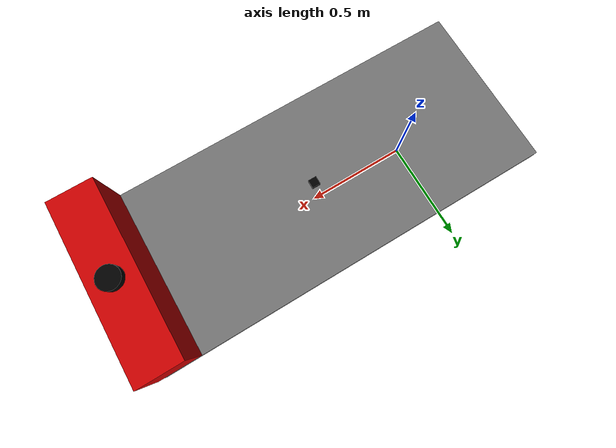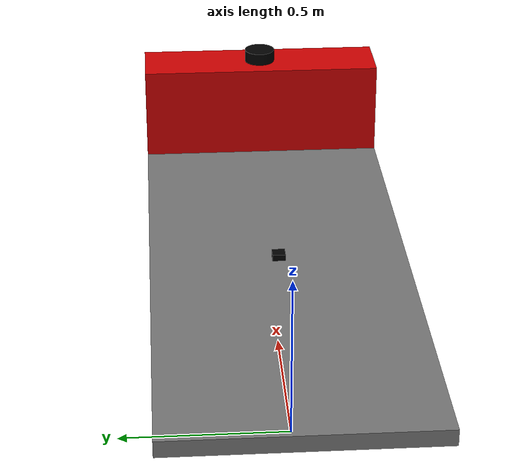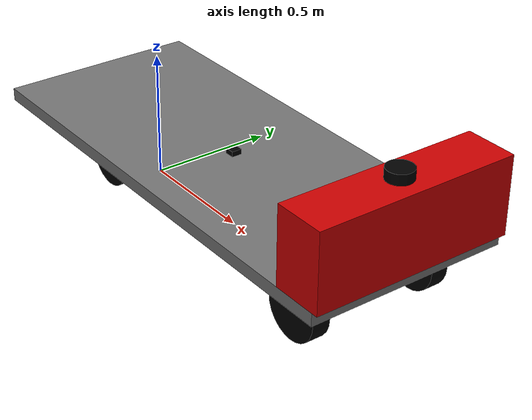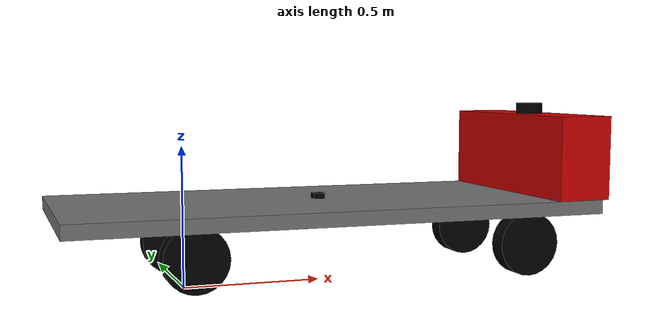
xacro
<?xml version="1.0"?>
<robot name="forklift" xmlns:xacro="http://www.ros.org/wiki/xacro">

  <!-- Robot Core: properties, macros, links, joints                              -->

  <!-- Read controller lateral_offset directly from YAML so model and controller stay in sync -->
  <xacro:property name="controller_config" value="${xacro.load_yaml('$(find offset_tricycle_robot)/config/offset_tricycle_controller.yaml')}"/>
  <xacro:property name="lateral_offset" value="${controller_config['offset_tricycle_controller']['ros__parameters']['lateral_offset']}"/>

  <xacro:property name="base_width" value="0.79"/>
  <xacro:property name="base_length" value="1.896"/>
  <xacro:property name="base_height" value="0.05"/>

  <xacro:property name="wheel_zoff" value="0.025"/>

  <!-- Rear wheels: 150 mm diameter, 54 mm width -->
  <xacro:property name="rear_wheel_radius" value="0.115"/>
  <xacro:property name="rear_wheel_width" value="0.07"/>
  <!-- Front left (passive): 85 mm diameter, 70 mm width -->
  <xacro:property name="front_left_wheel_radius" value="0.115"/>
  <xacro:property name="front_left_wheel_width" value="0.07"/>
  <!-- Front right (drive): 230 mm diameter, 70 mm width -->
  <xacro:property name="front_right_drive_wheel_radius" value="0.115"/>
  <xacro:property name="front_right_drive_wheel_width" value="0.07"/>

  <!-- Wheelbase: front axle center to rear axle center [m] -->
  <xacro:property name="wheelbase" value="1.215"/>
  <!-- Rear track (distance between rear wheels) [m] -->
  <xacro:property name="rear_track" value="0.395"/>
  <!-- Front track (distance between front wheels) [m] -->
  <xacro:property name="front_track" value="0.51"/>

  <xacro:property name="rear_track_half" value="${rear_track / 2}"/>
  <xacro:property name="front_track_half" value="${front_track / 2}"/>
  <!-- Rear axle center x in base_chassis frame; front_axle_x = rear_axle_x + wheelbase -->
  <xacro:property name="rear_axle_x" value="-0.5"/>
  <xacro:property name="front_axle_x" value="${rear_axle_x + wheelbase}"/>
  <xacro:property name="rear_wheel_z" value="${-(rear_wheel_radius + wheel_zoff)}"/>
  <xacro:property name="front_left_wheel_z" value="${-(front_left_wheel_radius + wheel_zoff)}"/>
  <!-- Ground level (same for all wheels); front right drive wheel center z from chassis -->
  <xacro:property name="ground_z" value="${rear_wheel_z - rear_wheel_radius}"/>
  <xacro:property name="front_right_drive_wheel_center_z" value="${ground_z + front_right_drive_wheel_radius}"/>

  <!-- Definition of some commonly used inertial properties -->
  <xacro:macro name="box_inertia" params="m w h d">
    <inertial>
      <origin xyz="0 0 0" rpy="${pi/2} 0 ${pi/2}"/>
      <mass value="${m}"/>
      <inertia ixx="${(m/12) * (h*h + d*d)}" ixy="0.0" ixz="0.0" iyy="${(m/12) * (w*w + d*d)}" iyz="0.0" izz="${(m/12) * (w*w + h*h)}"/>
    </inertial>
  </xacro:macro>

  <xacro:macro name="cylinder_inertia" params="m r h">
    <inertial>
      <origin xyz="0 0 0" rpy="${pi/2} 0 0" />
      <mass value="${m}"/>
      <inertia ixx="${(m/12) * (3*r*r + h*h)}" ixy = "0" ixz = "0" iyy="${(m/12) * (3*r*r + h*h)}" iyz = "0" izz="${(m/2) * (r*r)}"/>
    </inertial>
  </xacro:macro>

  <xacro:property name="color_black_rgba" value="0.0 0.0 0.0 1.0"/>
  <xacro:property name="color_white_rgba" value="1.0 1.0 1.0 1.0"/>
  <xacro:property name="color_blue_rgba" value="0.1 0.2 0.5 1.0"/>
  <xacro:property name="color_gray_rgba" value="0.45 0.45 0.45 1.0"/>
  <xacro:property name="color_red_rgba" value="0.8 0.0 0.0 1.0"/>

  <material name="black">
    <color rgba="${color_black_rgba}"/>
  </material>
  <material name="white">
    <color rgba="${color_white_rgba}"/>
  </material>
  <material name="blue">
    <color rgba="${color_blue_rgba}"/>
  </material>
  <material name="gray">
    <color rgba="${color_gray_rgba}"/>
  </material>
  <material name="red">
    <color rgba="${color_red_rgba}"/>
  </material>

  <!-- Robot Base -->
  <link name="base_link"/>

  <!-- Chassis -->
  <link name="base_chassis">
    <collision>
      <origin xyz="0.0 0.0 0.0" rpy="0.0 0.0 0.0"/>
      <geometry>
        <box size="${base_length} ${base_width} ${base_height}"/>
      </geometry>
    </collision>
    <visual>
      <origin xyz="0.0 0.0 0.0" rpy="0.0 0.0 0.0"/>
      <geometry>
        <box size="${base_length} ${base_width} ${base_height}"/>
      </geometry>
      <material name="gray"/>
    </visual>
    <xacro:box_inertia m="10" w="${base_width}" d="${base_length}" h="${base_height}"/>
  </link>

  <!-- base_link at rear axle center (odometry reference point); chassis origin is rear_axle_x ahead -->
  <joint name="base_link_joint" type="fixed">
    <origin xyz="${-rear_axle_x} 0.0 0.275" rpy="0.0 0.0 0.0"/>
    <parent link="base_link"/>
    <child link="base_chassis"/>
  </joint>

  <!-- Front panel: visual indicator for front of vehicle -->
  <link name="front_panel">
    <visual>
      <geometry>
        <box size="0.20 ${base_width} 0.3"/>
      </geometry>
      <material name="red"/>
    </visual>
    <collision>
      <geometry>
        <box size="0.15 ${base_width} 0.3"/>
      </geometry>
    </collision>
    <xacro:box_inertia m="0.5" w="${base_width}" d="0.05" h="0.3"/>
  </link>

  <joint name="front_panel_joint" type="fixed">
    <parent link="base_chassis"/>
    <child link="front_panel"/>
    <origin xyz="${base_length/2 - 0.075} 0.0 ${base_height/2 + 0.15}"/>
  </joint>

  <!-- Rear wheels (driven by diff / not in tricycle model; macro: prefix, x, y in base_chassis) -->
  <xacro:macro name="rear_wheel" params="prefix x y">
    <link name="${prefix}">
      <collision>
        <geometry>
          <cylinder radius="${rear_wheel_radius}" length="${rear_wheel_width}"/>
        </geometry>
      </collision>
      <visual>
        <geometry>
          <cylinder radius="${rear_wheel_radius}" length="${rear_wheel_width}"/>
        </geometry>
        <material name="black"/>
      </visual>
      <xacro:cylinder_inertia m="1" r="${rear_wheel_radius}" h="${rear_wheel_width}"/>
    </link>
    <joint name="${prefix}_joint" type="continuous">
      <origin xyz="${x} ${y} ${rear_wheel_z}" rpy="${-pi/2} 0 0"/>
      <parent link="base_chassis"/>
      <child link="${prefix}"/>
      <axis xyz="0 0 1"/>
      <dynamics damping="0.2"/>
    </joint>
  </xacro:macro>

  <xacro:rear_wheel prefix="rear_right_wheel" x="${rear_axle_x}" y="${-rear_track_half}" />
  <xacro:rear_wheel prefix="rear_left_wheel" x="${rear_axle_x}" y="${rear_track_half}" />

  <!-- Front right: driven wheel (steering + traction), 230 mm diameter, 70 mm width -->
  <link name="front_right_drive_wheel">
    <visual>
      <geometry>
        <cylinder radius="${front_right_drive_wheel_radius}" length="${front_right_drive_wheel_width}"/>
      </geometry>
      <material name="black"/>
    </visual>
    <collision>
      <geometry>
        <cylinder radius="${front_right_drive_wheel_radius}" length="${front_right_drive_wheel_width}"/>
      </geometry>
    </collision>
    <xacro:cylinder_inertia m="1" r="${front_right_drive_wheel_radius}" h="${front_right_drive_wheel_width}"/>
  </link>

  <!-- Front left: passive/caster wheel, 85 mm diameter, 70 mm width -->
  <link name="front_left_wheel">
    <visual>
      <geometry>
        <cylinder radius="${front_left_wheel_radius}" length="${front_left_wheel_width}"/>
      </geometry>
      <material name="black"/>
    </visual>
    <collision>
      <geometry>
        <cylinder radius="${front_left_wheel_radius}" length="${front_left_wheel_width}"/>
      </geometry>
    </collision>
    <xacro:cylinder_inertia m="1" r="${front_left_wheel_radius}" h="${front_left_wheel_width}"/>
  </link>

  <joint name="front_left_wheel_joint" type="continuous">
    <origin xyz="${front_axle_x} ${front_track_half} ${front_left_wheel_z}" rpy="${-pi/2} 0 0"/>
    <parent link="base_chassis"/>
    <child link="front_left_wheel"/>
    <axis xyz="0 0 1"/>
    <dynamics damping="0.2"/>
  </joint>

  <!-- Bearing (steering joint) – front right only -->
  <link name="bearing">
    <xacro:cylinder_inertia m="0.1" r="0.045" h="0.04"/>
  </link>

  <joint name="bearing_joint" type="revolute">
    <axis xyz="0 0 1"/>
    <limit effort="1000.0" lower="-1.4" upper="1.4" velocity="0.5"/>
    <parent link="base_chassis"/>
    <child link="bearing"/>
    <origin xyz="${front_axle_x} ${-front_track_half} ${base_height/2}"/>
  </joint>

  <!-- Wheel center at same ground level as rear/front_left wheels -->
  <joint name="front_right_drive_wheel_joint" type="continuous">
    <axis xyz="0 0 1" />
    <parent link="bearing"/>
    <child link="front_right_drive_wheel"/>
    <origin xyz="0.0 0.0 ${-base_height/2 + front_right_drive_wheel_center_z}" rpy="${-pi/2} 0.0 0.0"/>
    <dynamics damping="0.2" />
  </joint>

  <gazebo reference="front_right_drive_wheel">
    <!-- mu2 high = less traction slip. mu1 high = less lateral slip when steering → tighter turn, Gazebo path closer to controller/EKF -->
    <mu1>1.8</mu1>
    <mu2>2.5</mu2>
    <kp>10000000.0</kp>
    <kd>1.0</kd>
    <minDepth>0.001</minDepth>
  </gazebo>
  <gazebo reference="front_left_wheel">
    <mu1>0.0</mu1>
    <mu2>0.0</mu2>
    <kp>10000000.0</kp>
    <kd>1.0</kd>
  </gazebo>
  <gazebo reference="rear_left_wheel">
    <!-- Slightly lower mu1 lets rear slip a little laterally → can tighten turn to match tricycle model -->
    <mu1>0.5</mu1>
    <mu2>1.5</mu2>
    <kp>10000000.0</kp>
    <kd>1.0</kd>
  </gazebo>
  <gazebo reference="rear_right_wheel">
    <mu1>0.5</mu1>
    <mu2>1.5</mu2>
    <kp>10000000.0</kp>
    <kd>1.0</kd>
  </gazebo>

  <!-- IMU Sensor -->
  <link name="imu_link">
    <visual>
      <geometry>
        <box size="0.04 0.04 0.02"/>
      </geometry>
      <material name="black"/>
    </visual>
    <collision>
      <geometry>
        <box size="0.04 0.04 0.02"/>
      </geometry>
    </collision>
    <xacro:box_inertia m="0.01" w="0.04" d="0.04" h="0.02"/>
  </link>

  <joint name="imu_joint" type="fixed">
    <parent link="base_chassis"/>
    <child link="imu_link"/>
    <origin xyz="0.0 0.0 0.035" rpy="0 0 0"/>
  </joint>

  <gazebo reference="imu_link">
    <sensor name="imu_sensor" type="imu">
      <always_on>true</always_on>
      <update_rate>50</update_rate>
      <visualize>false</visualize>
      <topic>/imu/data</topic>
      <gz_frame_id>imu_link</gz_frame_id>
      <imu>
        <angular_velocity>
          <x>
            <noise type="gaussian">
              <mean>0.0</mean>
              <stddev>0.0</stddev>
              <bias_mean>0.0</bias_mean>
              <bias_stddev>0.0</bias_stddev>
            </noise>
          </x>
          <y>
            <noise type="gaussian">
              <mean>0.0</mean>
              <stddev>0.0</stddev>
              <bias_mean>0.0</bias_mean>
              <bias_stddev>0.0</bias_stddev>
            </noise>
          </y>
          <z>
            <noise type="gaussian">
              <mean>0.0</mean>
              <stddev>0.0</stddev>
              <bias_mean>0.0</bias_mean>
              <bias_stddev>0.0</bias_stddev>
            </noise>
          </z>
        </angular_velocity>
        <linear_acceleration>
          <x>
            <noise type="gaussian">
              <mean>0.0</mean>
              <stddev>0.0</stddev>
              <bias_mean>0.0</bias_mean>
              <bias_stddev>0.0</bias_stddev>
            </noise>
          </x>
          <y>
            <noise type="gaussian">
              <mean>0.0</mean>
              <stddev>0.0</stddev>
              <bias_mean>0.0</bias_mean>
              <bias_stddev>0.0</bias_stddev>
            </noise>
          </y>
          <z>
            <noise type="gaussian">
              <mean>0.0</mean>
              <stddev>0.0</stddev>
              <bias_mean>0.0</bias_mean>
              <bias_stddev>0.0</bias_stddev>
            </noise>
          </z>
        </linear_acceleration>
      </imu>
    </sensor>
  </gazebo>

  <!-- Gazebo IMU system plugin (required for gz-sim) -->
  <gazebo>
    <plugin filename="gz-sim-imu-system" name="gz::sim::systems::Imu"/>
  </gazebo>

  <!-- LiDAR Sensor -->
  <link name="lidar_link">
    <visual>
      <geometry>
        <cylinder radius="0.05" length="0.04"/>
      </geometry>
      <material name="black"/>
    </visual>
    <collision>
      <geometry>
        <cylinder radius="0.05" length="0.04"/>
      </geometry>
    </collision>
    <xacro:cylinder_inertia m="0.1" r="0.05" h="0.04"/>
  </link>

  <joint name="lidar_joint" type="fixed">
    <parent link="front_panel"/>
    <child link="lidar_link"/>
    <origin xyz="0.0 0.0 ${0.15 + 0.02}" rpy="0 0 0"/>
  </joint>

  <gazebo reference="lidar_link">
    <sensor name="gpu_lidar" type="gpu_lidar">
      <always_on>true</always_on>
      <update_rate>10</update_rate>
      <visualize>true</visualize>
      <topic>/scan</topic>
      <gz_frame_id>lidar_link</gz_frame_id>
      <ray>
        <scan>
          <horizontal>
            <samples>720</samples>
            <resolution>1</resolution>
            <min_angle>-3.14159</min_angle>
            <max_angle>3.14159</max_angle>
          </horizontal>
        </scan>
        <range>
          <min>0.1</min>
          <max>30.0</max>
          <resolution>0.01</resolution>
        </range>
        <noise>
          <type>gaussian</type>
          <mean>0.0</mean>
          <stddev>0.0</stddev>
        </noise>
      </ray>
    </sensor>
  </gazebo>

  <!-- Gazebo sensors system plugin (required for gpu_lidar) -->
  <gazebo>
    <plugin filename="gz-sim-sensors-system" name="gz::sim::systems::Sensors">
      <render_engine>ogre2</render_engine>
    </plugin>
  </gazebo>

  <!-- Gazebo ground truth odometry publisher -->
  <gazebo>
    <plugin filename="gz-sim-odometry-publisher-system"
            name="gz::sim::systems::OdometryPublisher">
      <odom_frame>odom</odom_frame>
      <robot_base_frame>base_link</robot_base_frame>
      <odom_publish_frequency>50</odom_publish_frequency>
      <odom_topic>/model/forklift/odometry</odom_topic>
    </plugin>
  </gazebo>

  <!-- Gazebo Sim Tricycle Control (from gz_tricycle_control.xacro)               -->

  <ros2_control name="GazeboSimSystem" type="system">
    <hardware>
      <plugin>gz_ros2_control/GazeboSimSystem</plugin>
    </hardware>
    <joint name="bearing_joint">
      <command_interface name="position">
        <param name="min">-1.4</param>
        <param name="max">1.4</param>
      </command_interface>
      <state_interface name="position"/>
    </joint>
    <joint name="front_right_drive_wheel_joint">
      <command_interface name="velocity"/>
      <state_interface name="velocity"/>
      <state_interface name="position"/>
    </joint>
  </ros2_control>

  <gazebo>
    <plugin filename="gz_ros2_control-system" name="gz_ros2_control::GazeboSimROS2ControlPlugin">
      <parameters>$(find offset_tricycle_robot)/config/offset_tricycle_controller.yaml</parameters>
      <ros>
        <remapping>/tf:=tf</remapping>
        <remapping>/tf_static:=tf_static</remapping>
      </ros>
    </plugin>
  </gazebo>

  <!-- Gazebo Sim Materials / visuals (from gazebo_sim_material.xacro)           -->

  <gazebo reference="base_chassis">
    <visual>
      <material>
        <ambient>${color_gray_rgba}</ambient>
        <diffuse>${color_gray_rgba}</diffuse>
      </material>
    </visual>
  </gazebo>

  <gazebo reference="front_panel">
    <visual>
      <material>
        <ambient>${color_red_rgba}</ambient>
        <diffuse>${color_red_rgba}</diffuse>
      </material>
    </visual>
  </gazebo>

  <gazebo reference="rear_right_wheel">
    <visual>
      <material>
        <ambient>${color_black_rgba}</ambient>
        <diffuse>${color_black_rgba}</diffuse>
      </material>
    </visual>
  </gazebo>

  <gazebo reference="rear_left_wheel">
    <visual>
      <material>
        <ambient>${color_black_rgba}</ambient>
        <diffuse>${color_black_rgba}</diffuse>
      </material>
    </visual>
  </gazebo>

  <gazebo reference="front_right_drive_wheel">
    <visual>
      <material>
        <ambient>${color_black_rgba}</ambient>
        <diffuse>${color_black_rgba}</diffuse>
      </material>
    </visual>
  </gazebo>

  <gazebo reference="front_left_wheel">
    <visual>
      <material>
        <ambient>${color_black_rgba}</ambient>
        <diffuse>${color_black_rgba}</diffuse>
      </material>
    </visual>
  </gazebo>

  <gazebo reference="lidar_link">
    <visual>
      <material>
        <ambient>${color_black_rgba}</ambient>
        <diffuse>${color_black_rgba}</diffuse>
      </material>
    </visual>
  </gazebo>

</robot>
